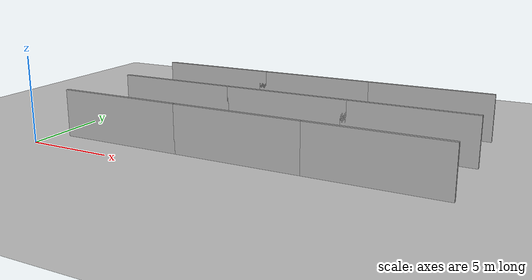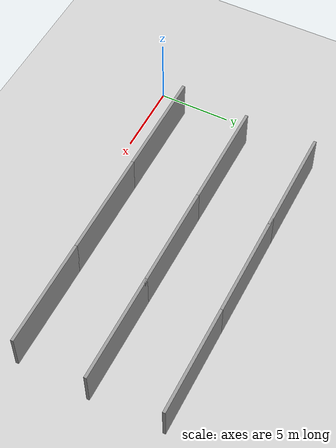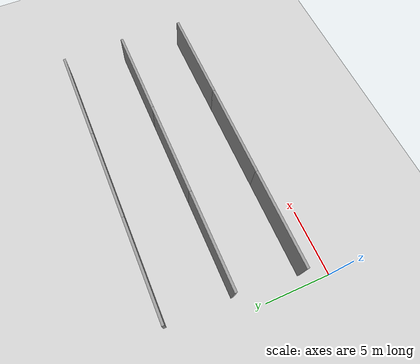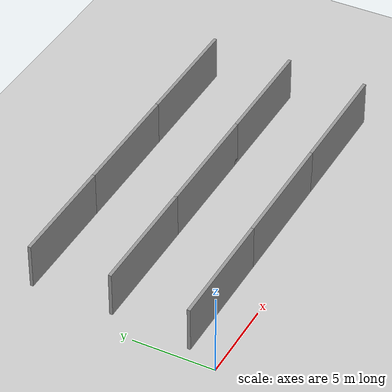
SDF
<sdf version="1.4">
 <world name="default">
  <light name="sun" type="directional">
   <pose>0 0 10 0 -0 0</pose>
   <diffuse>0.8 0.8 0.8 1</diffuse>
   <specular>0.2 0.2 0.2 1</specular>
   <attenuation>
    <range>1000</range>
    <constant>0.9</constant>
    <linear>0.01</linear>
    <quadratic>0.001</quadratic>
   </attenuation>
   <direction>-0.5 0.1 -0.9</direction>
  </light>
  <model name="ground_plane">
   <static>1</static>
   <link name="link">
    <collision name="collision">
     <geometry><plane><normal>0 0 1</normal><size>100 100</size></plane></geometry>
     <surface><friction><ode><mu>100</mu><mu2>50</mu2></ode></friction></surface>
    </collision>
    <visual name="visual">
     <cast_shadows>0</cast_shadows>
     <geometry><plane><normal>0 0 1</normal><size>100 100</size></plane></geometry>
     <material>
      <script><uri>file://media/materials/scripts/gazebo.material</uri><name>Gazebo/Grey</name></script>
     </material>
    </visual>
    <velocity_decay><linear>0</linear><angular>0</angular></velocity_decay>
   </link>
  </model>
  <physics type="ode">
   <max_step_size>0.001</max_step_size>
   <real_time_factor>1</real_time_factor>
   <real_time_update_rate>1000</real_time_update_rate>
   <gravity>0 0 -9.8</gravity>
  </physics>
  <scene><ambient>0.4 0.4 0.4 1</ambient><background>0.7 0.7 0.7 1</background><shadows>1</shadows></scene>
  <model name="grey_wall">
   <static>1</static>
   <link name="link">
    <pose>0 0 1.4 0 -0 0</pose>
    <collision name="collision"><geometry><box><size>7.5 0.2 2.8</size></box></geometry></collision>
    <visual name="visual">
     <cast_shadows>0</cast_shadows>
     <geometry><box><size>7.5 0.2 2.8</size></box></geometry>
     <material>
      <script>
       <uri>model://grey_wall/materials/scripts</uri>
       <uri>model://grey_wall/materials/textures</uri>
       <name>vrc/grey_wall</name>
      </script>
     </material>
    </visual>
    <velocity_decay><linear>0</linear><angular>0</angular></velocity_decay>
   </link>
   <pose>4.53804 2 0 0 -0 0</pose>
  </model>
  <model name="grey_wall_0">
   <static>1</static>
   <link name="link">
    <pose>0 0 1.4 0 -0 0</pose>
    <collision name="collision"><geometry><box><size>7.5 0.2 2.8</size></box></geometry></collision>
    <visual name="visual">
     <cast_shadows>0</cast_shadows>
     <geometry><box><size>7.5 0.2 2.8</size></box></geometry>
     <material>
      <script>
       <uri>model://grey_wall/materials/scripts</uri>
       <uri>model://grey_wall/materials/textures</uri>
       <name>vrc/grey_wall</name>
      </script>
     </material>
    </visual>
    <velocity_decay><linear>0</linear><angular>0</angular></velocity_decay>
   </link>
   <pose>12 2 0 0 -0 0</pose>
  </model>
  <model name="grey_wall_2">
   <static>1</static>
   <link name="link">
    <pose>0 0 1.4 0 -0 0</pose>
    <collision name="collision"><geometry><box><size>7.5 0.2 2.8</size></box></geometry></collision>
    <visual name="visual">
     <cast_shadows>0</cast_shadows>
     <geometry><box><size>7.5 0.2 2.8</size></box></geometry>
     <material>
      <script>
       <uri>model://grey_wall/materials/scripts</uri>
       <uri>model://grey_wall/materials/textures</uri>
       <name>vrc/grey_wall</name>
      </script>
     </material>
    </visual>
    <velocity_decay><linear>0</linear><angular>0</angular></velocity_decay>
   </link>
   <pose>19.4203 2 0 0 -0 0</pose>
  </model>
  <model name="grey_wall_3">
   <static>1</static>
   <link name="link">
    <pose>0 0 1.4 0 -0 0</pose>
    <collision name="collision"><geometry><box><size>7.5 0.2 2.8</size></box></geometry></collision>
    <visual name="visual">
     <cast_shadows>0</cast_shadows>
     <geometry><box><size>7.5 0.2 2.8</size></box></geometry>
     <material>
      <script>
       <uri>model://grey_wall/materials/scripts</uri>
       <uri>model://grey_wall/materials/textures</uri>
       <name>vrc/grey_wall</name>
      </script>
     </material>
    </visual>
    <velocity_decay><linear>0</linear><angular>0</angular></velocity_decay>
   </link>
   <pose>19.5818 7 0 0 -0 0</pose>
  </model>
  <model name="grey_wall_4">
   <static>1</static>
   <link name="link">
    <pose>0 0 1.4 0 -0 0</pose>
    <collision name="collision"><geometry><box><size>7.5 0.2 2.8</size></box></geometry></collision>
    <visual name="visual">
     <cast_shadows>0</cast_shadows>
     <geometry><box><size>7.5 0.2 2.8</size></box></geometry>
     <material>
      <script>
       <uri>model://grey_wall/materials/scripts</uri>
       <uri>model://grey_wall/materials/textures</uri>
       <name>vrc/grey_wall</name>
      </script>
     </material>
    </visual>
    <velocity_decay><linear>0</linear><angular>0</angular></velocity_decay>
   </link>
   <pose>12.4273 7 0 0 -0 0</pose>
  </model>
  <model name="grey_wall_5">
   <static>1</static>
   <link name="link">
    <pose>0 0 1.4 0 -0 0</pose>
    <collision name="collision"><geometry><box><size>7.5 0.2 2.8</size></box></geometry></collision>
    <visual name="visual">
     <cast_shadows>0</cast_shadows>
     <geometry><box><size>7.5 0.2 2.8</size></box></geometry>
     <material>
      <script>
       <uri>model://grey_wall/materials/scripts</uri>
       <uri>model://grey_wall/materials/textures</uri>
       <name>vrc/grey_wall</name>
      </script>
     </material>
    </visual>
    <velocity_decay><linear>0</linear><angular>0</angular></velocity_decay>
   </link>
   <pose>5 7 0 0 -0 0</pose>
  </model>
  <model name="grey_wall_6">
   <static>1</static>
   <link name="link">
    <pose>0 0 1.4 0 -0 0</pose>
    <collision name="collision"><geometry><box><size>7.5 0.2 2.8</size></box></geometry></collision>
    <visual name="visual">
     <cast_shadows>0</cast_shadows>
     <geometry><box><size>7.5 0.2 2.8</size></box></geometry>
     <material>
      <script>
       <uri>model://grey_wall/materials/scripts</uri>
       <uri>model://grey_wall/materials/textures</uri>
       <name>vrc/grey_wall</name>
      </script>
     </material>
    </visual>
    <velocity_decay><linear>0</linear><angular>0</angular></velocity_decay>
   </link>
   <pose>5 12 0 0 -0 0</pose>
  </model>
  <model name="grey_wall_7">
   <static>1</static>
   <link name="link">
    <pose>0 0 1.4 0 -0 0</pose>
    <collision name="collision"><geometry><box><size>7.5 0.2 2.8</size></box></geometry></collision>
    <visual name="visual">
     <cast_shadows>0</cast_shadows>
     <geometry><box><size>7.5 0.2 2.8</size></box></geometry>
     <material>
      <script>
       <uri>model://grey_wall/materials/scripts</uri>
       <uri>model://grey_wall/materials/textures</uri>
       <name>vrc/grey_wall</name>
      </script>
     </material>
    </visual>
    <velocity_decay><linear>0</linear><angular>0</angular></velocity_decay>
   </link>
   <pose>12 12 0 0 -0 0</pose>
  </model>
  <model name="grey_wall_8">
   <static>1</static>
   <link name="link">
    <pose>0 0 1.4 0 -0 0</pose>
    <collision name="collision"><geometry><box><size>7.5 0.2 2.8</size></box></geometry></collision>
    <visual name="visual">
     <cast_shadows>0</cast_shadows>
     <geometry><box><size>7.5 0.2 2.8</size></box></geometry>
     <material>
      <script>
       <uri>model://grey_wall/materials/scripts</uri>
       <uri>model://grey_wall/materials/textures</uri>
       <name>vrc/grey_wall</name>
      </script>
     </material>
    </visual>
    <velocity_decay><linear>0</linear><angular>0</angular></velocity_decay>
   </link>
   <pose>19.46 12 0 0 -0 0</pose>
  </model>
 </world>
</sdf>
